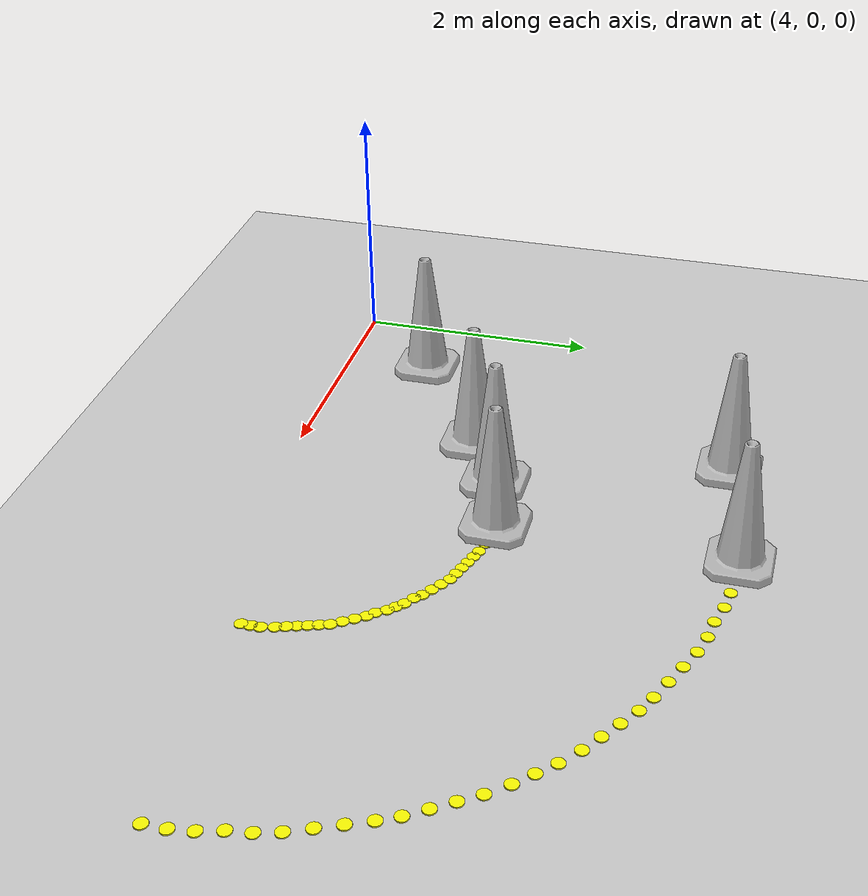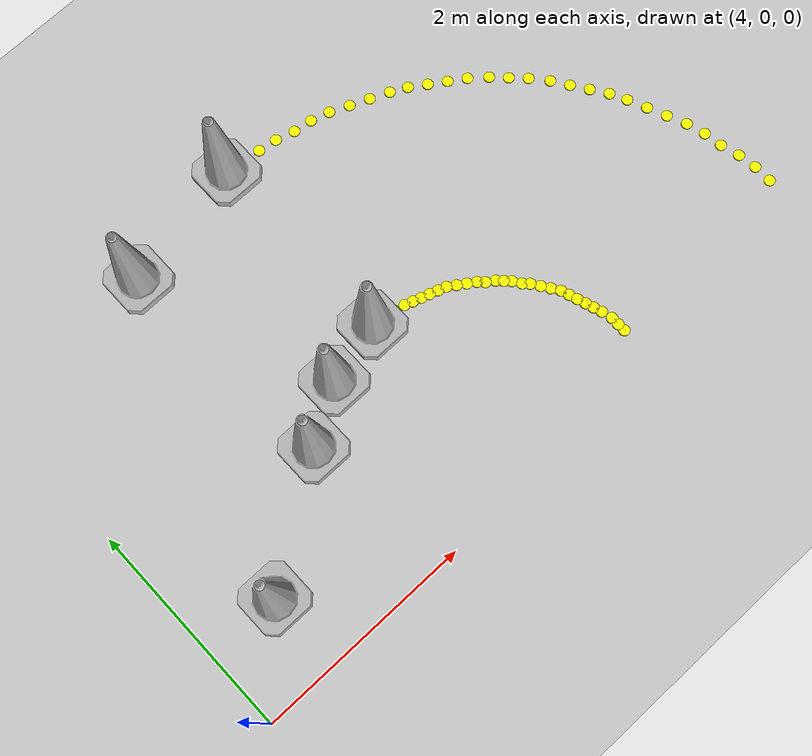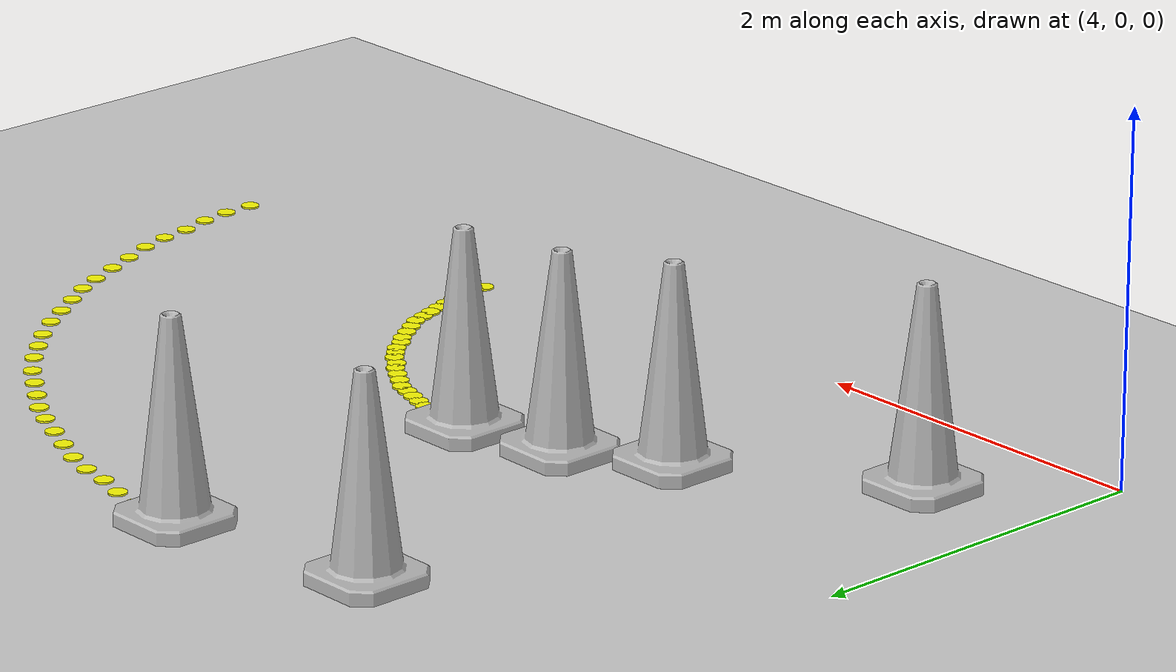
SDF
<sdf version="1.6">
 <world name="default">
  <model name="ground_plane">
   <static>1</static>
   <link name="link">
    <collision name="collision">
     <geometry><plane><normal>0 0 1</normal><size>100 100</size></plane></geometry>
     <surface><friction><ode><mu>100</mu><mu2>50</mu2></ode></friction></surface>
    </collision>
    <visual name="visual">
     <cast_shadows>0</cast_shadows>
     <geometry><plane><normal>0 0 1</normal><size>100 100</size></plane></geometry>
     <material>
      <script><uri>file://media/materials/scripts/gazebo.material</uri><name>Gazebo/Grey</name></script>
     </material>
    </visual>
   </link>
  </model>
  <model name="red_model_16">
   <link name="link">
    <collision name="collision">
     <geometry>
      <mesh><scale>10 10 10</scale><uri>model://construction_cone_red/meshes/construction_cone.dae</uri></mesh>
     </geometry>
    </collision>
    <visual name="visual">
     <geometry>
      <mesh><scale>10 10 10</scale><uri>model://construction_cone_red/meshes/construction_cone.dae</uri></mesh>
     </geometry>
    </visual>
    <inertial>
     <inertia><ixx>1</ixx><ixy>0</ixy><ixz>0</ixz><iyy>1</iyy><iyz>0</iyz><izz>1</izz></inertia>
     <mass>1</mass>
    </inertial>
   </link>
   <pose>4.674 0.7134 -0 0 -1e-06 0</pose>
  </model>
  <model name="red_model_23">
   <link name="link">
    <collision name="collision">
     <geometry>
      <mesh><scale>10 10 10</scale><uri>model://construction_cone_red/meshes/construction_cone.dae</uri></mesh>
     </geometry>
    </collision>
    <visual name="visual">
     <geometry>
      <mesh><scale>10 10 10</scale><uri>model://construction_cone_red/meshes/construction_cone.dae</uri></mesh>
     </geometry>
    </visual>
    <inertial>
     <inertia><ixx>1</ixx><ixy>0</ixy><ixz>0</ixz><iyy>1</iyy><iyz>0</iyz><izz>1</izz></inertia>
     <mass>1</mass>
    </inertial>
   </link>
   <pose>5.72569 1.42144 -9.8e-05 0 -0 -0.000104</pose>
  </model>
  <model name="red_model_27">
   <link name="link">
    <collision name="collision">
     <geometry>
      <mesh><scale>10 10 10</scale><uri>model://construction_cone_red/meshes/construction_cone.dae</uri></mesh>
     </geometry>
    </collision>
    <visual name="visual">
     <geometry>
      <mesh><scale>10 10 10</scale><uri>model://construction_cone_red/meshes/construction_cone.dae</uri></mesh>
     </geometry>
    </visual>
    <inertial>
     <inertia><ixx>1</ixx><ixy>0</ixy><ixz>0</ixz><iyy>1</iyy><iyz>0</iyz><izz>1</izz></inertia>
     <mass>1</mass>
    </inertial>
   </link>
   <pose>6.22901 1.72751 0.003913 0.00262 -0.013788 0.0036</pose>
  </model>
  <model name="red_model_30">
   <link name="link">
    <collision name="collision">
     <geometry>
      <mesh><scale>10 10 10</scale><uri>model://construction_cone_red/meshes/construction_cone.dae</uri></mesh>
     </geometry>
    </collision>
    <visual name="visual">
     <geometry>
      <mesh><scale>10 10 10</scale><uri>model://construction_cone_red/meshes/construction_cone.dae</uri></mesh>
     </geometry>
    </visual>
    <inertial>
     <inertia><ixx>1</ixx><ixy>0</ixy><ixz>0</ixz><iyy>1</iyy><iyz>0</iyz><izz>1</izz></inertia>
     <mass>1</mass>
    </inertial>
   </link>
   <pose>6.7896 1.8696 0.00499 0 -0 5e-06</pose>
  </model>
  <model name="blue_model_27">
   <link name="link">
    <collision name="collision">
     <geometry>
      <mesh><scale>10 10 10</scale><uri>model://construction_cone_blue/meshes/construction_cone.dae</uri></mesh>
     </geometry>
    </collision>
    <visual name="visual">
     <geometry>
      <mesh><scale>10 10 10</scale><uri>model://construction_cone_blue/meshes/construction_cone.dae</uri></mesh>
     </geometry>
    </visual>
    <inertial>
     <inertia><ixx>1</ixx><ixy>0</ixy><ixz>0</ixz><iyy>1</iyy><iyz>0</iyz><izz>1</izz></inertia>
     <mass>1</mass>
    </inertial>
   </link>
   <pose>5.6088 3.5178 -0 0 -0 0</pose>
  </model>
  <model name="blue_model_30">
   <link name="link">
    <collision name="collision">
     <geometry>
      <mesh><scale>10 10 10</scale><uri>model://construction_cone_blue/meshes/construction_cone.dae</uri></mesh>
     </geometry>
    </collision>
    <visual name="visual">
     <geometry>
      <mesh><scale>10 10 10</scale><uri>model://construction_cone_blue/meshes/construction_cone.dae</uri></mesh>
     </geometry>
    </visual>
    <inertial>
     <inertia><ixx>1</ixx><ixy>0</ixy><ixz>0</ixz><iyy>1</iyy><iyz>0</iyz><izz>1</izz></inertia>
     <mass>1</mass>
    </inertial>
   </link>
   <pose>6.7896 3.7392 0.00499 0 -0 0</pose>
  </model>
  <model name="yellow_model_0">
   <static>1</static>
   <link name="link">
    <visual name="visual">
     <geometry><cylinder><radius>0.05</radius><length>0.01</length></cylinder></geometry>
     <material><ambient>1 1 0 1</ambient><diffuse>1 1 0 1</diffuse><specular>0.5 0.5 0.5 1</specular></material>
    </visual>
    <collision name="collision">
     <geometry><cylinder><radius>0.5</radius><length>0.01</length></cylinder></geometry>
    </collision>
   </link>
   <pose>6.7896 3.7392 0 0 -0 0</pose>
  </model>
  <model name="yellow_model_1">
   <static>1</static>
   <link name="link">
    <visual name="visual">
     <geometry><cylinder><radius>0.05</radius><length>0.01</length></cylinder></geometry>
     <material><ambient>1 1 0 1</ambient><diffuse>1 1 0 1</diffuse><specular>0.5 0.5 0.5 1</specular></material>
    </visual>
    <collision name="collision">
     <geometry><cylinder><radius>0.5</radius><length>0.01</length></cylinder></geometry>
    </collision>
   </link>
   <pose>6.9618 3.7146 0 0 -0 0</pose>
  </model>
  <model name="yellow_model_2">
   <static>1</static>
   <link name="link">
    <visual name="visual">
     <geometry><cylinder><radius>0.05</radius><length>0.01</length></cylinder></geometry>
     <material><ambient>1 1 0 1</ambient><diffuse>1 1 0 1</diffuse><specular>0.5 0.5 0.5 1</specular></material>
    </visual>
    <collision name="collision">
     <geometry><cylinder><radius>0.5</radius><length>0.01</length></cylinder></geometry>
    </collision>
   </link>
   <pose>7.134 3.7146 0 0 -0 0</pose>
  </model>
  <model name="yellow_model_3">
   <static>1</static>
   <link name="link">
    <visual name="visual">
     <geometry><cylinder><radius>0.05</radius><length>0.01</length></cylinder></geometry>
     <material><ambient>1 1 0 1</ambient><diffuse>1 1 0 1</diffuse><specular>0.5 0.5 0.5 1</specular></material>
    </visual>
    <collision name="collision">
     <geometry><cylinder><radius>0.5</radius><length>0.01</length></cylinder></geometry>
    </collision>
   </link>
   <pose>7.3062 3.69 0 0 -0 0</pose>
  </model>
  <model name="yellow_model_4">
   <static>1</static>
   <link name="link">
    <visual name="visual">
     <geometry><cylinder><radius>0.05</radius><length>0.01</length></cylinder></geometry>
     <material><ambient>1 1 0 1</ambient><diffuse>1 1 0 1</diffuse><specular>0.5 0.5 0.5 1</specular></material>
    </visual>
    <collision name="collision">
     <geometry><cylinder><radius>0.5</radius><length>0.01</length></cylinder></geometry>
    </collision>
   </link>
   <pose>7.4784 3.6408 0 0 -0 0</pose>
  </model>
  <model name="yellow_model_5">
   <static>1</static>
   <link name="link">
    <visual name="visual">
     <geometry><cylinder><radius>0.05</radius><length>0.01</length></cylinder></geometry>
     <material><ambient>1 1 0 1</ambient><diffuse>1 1 0 1</diffuse><specular>0.5 0.5 0.5 1</specular></material>
    </visual>
    <collision name="collision">
     <geometry><cylinder><radius>0.5</radius><length>0.01</length></cylinder></geometry>
    </collision>
   </link>
   <pose>7.6506 3.6162 0 0 -0 0</pose>
  </model>
  <model name="yellow_model_6">
   <static>1</static>
   <link name="link">
    <visual name="visual">
     <geometry><cylinder><radius>0.05</radius><length>0.01</length></cylinder></geometry>
     <material><ambient>1 1 0 1</ambient><diffuse>1 1 0 1</diffuse><specular>0.5 0.5 0.5 1</specular></material>
    </visual>
    <collision name="collision">
     <geometry><cylinder><radius>0.5</radius><length>0.01</length></cylinder></geometry>
    </collision>
   </link>
   <pose>7.8228 3.567 0 0 -0 0</pose>
  </model>
  <model name="yellow_model_7">
   <static>1</static>
   <link name="link">
    <visual name="visual">
     <geometry><cylinder><radius>0.05</radius><length>0.01</length></cylinder></geometry>
     <material><ambient>1 1 0 1</ambient><diffuse>1 1 0 1</diffuse><specular>0.5 0.5 0.5 1</specular></material>
    </visual>
    <collision name="collision">
     <geometry><cylinder><radius>0.5</radius><length>0.01</length></cylinder></geometry>
    </collision>
   </link>
   <pose>7.995 3.4932 0 0 -0 0</pose>
  </model>
  <model name="yellow_model_8">
   <static>1</static>
   <link name="link">
    <visual name="visual">
     <geometry><cylinder><radius>0.05</radius><length>0.01</length></cylinder></geometry>
     <material><ambient>1 1 0 1</ambient><diffuse>1 1 0 1</diffuse><specular>0.5 0.5 0.5 1</specular></material>
    </visual>
    <collision name="collision">
     <geometry><cylinder><radius>0.5</radius><length>0.01</length></cylinder></geometry>
    </collision>
   </link>
   <pose>8.1672 3.4194 0 0 -0 0</pose>
  </model>
  <model name="yellow_model_9">
   <static>1</static>
   <link name="link">
    <visual name="visual">
     <geometry><cylinder><radius>0.05</radius><length>0.01</length></cylinder></geometry>
     <material><ambient>1 1 0 1</ambient><diffuse>1 1 0 1</diffuse><specular>0.5 0.5 0.5 1</specular></material>
    </visual>
    <collision name="collision">
     <geometry><cylinder><radius>0.5</radius><length>0.01</length></cylinder></geometry>
    </collision>
   </link>
   <pose>8.3394 3.3456 0 0 -0 0</pose>
  </model>
  <model name="yellow_model_10">
   <static>1</static>
   <link name="link">
    <visual name="visual">
     <geometry><cylinder><radius>0.05</radius><length>0.01</length></cylinder></geometry>
     <material><ambient>1 1 0 1</ambient><diffuse>1 1 0 1</diffuse><specular>0.5 0.5 0.5 1</specular></material>
    </visual>
    <collision name="collision">
     <geometry><cylinder><radius>0.5</radius><length>0.01</length></cylinder></geometry>
    </collision>
   </link>
   <pose>8.487 3.2718 0 0 -0 0</pose>
  </model>
  <model name="yellow_model_11">
   <static>1</static>
   <link name="link">
    <visual name="visual">
     <geometry><cylinder><radius>0.05</radius><length>0.01</length></cylinder></geometry>
     <material><ambient>1 1 0 1</ambient><diffuse>1 1 0 1</diffuse><specular>0.5 0.5 0.5 1</specular></material>
    </visual>
    <collision name="collision">
     <geometry><cylinder><radius>0.5</radius><length>0.01</length></cylinder></geometry>
    </collision>
   </link>
   <pose>8.6346 3.1734 0 0 -0 0</pose>
  </model>
  <model name="yellow_model_12">
   <static>1</static>
   <link name="link">
    <visual name="visual">
     <geometry><cylinder><radius>0.05</radius><length>0.01</length></cylinder></geometry>
     <material><ambient>1 1 0 1</ambient><diffuse>1 1 0 1</diffuse><specular>0.5 0.5 0.5 1</specular></material>
    </visual>
    <collision name="collision">
     <geometry><cylinder><radius>0.5</radius><length>0.01</length></cylinder></geometry>
    </collision>
   </link>
   <pose>8.7822 3.075 0 0 -0 0</pose>
  </model>
  <model name="yellow_model_13">
   <static>1</static>
   <link name="link">
    <visual name="visual">
     <geometry><cylinder><radius>0.05</radius><length>0.01</length></cylinder></geometry>
     <material><ambient>1 1 0 1</ambient><diffuse>1 1 0 1</diffuse><specular>0.5 0.5 0.5 1</specular></material>
    </visual>
    <collision name="collision">
     <geometry><cylinder><radius>0.5</radius><length>0.01</length></cylinder></geometry>
    </collision>
   </link>
   <pose>8.9298 2.9766 0 0 -0 0</pose>
  </model>
  <model name="yellow_model_14">
   <static>1</static>
   <link name="link">
    <visual name="visual">
     <geometry><cylinder><radius>0.05</radius><length>0.01</length></cylinder></geometry>
     <material><ambient>1 1 0 1</ambient><diffuse>1 1 0 1</diffuse><specular>0.5 0.5 0.5 1</specular></material>
    </visual>
    <collision name="collision">
     <geometry><cylinder><radius>0.5</radius><length>0.01</length></cylinder></geometry>
    </collision>
   </link>
   <pose>9.0774 2.8536 0 0 -0 0</pose>
  </model>
  <model name="yellow_model_15">
   <static>1</static>
   <link name="link">
    <visual name="visual">
     <geometry><cylinder><radius>0.05</radius><length>0.01</length></cylinder></geometry>
     <material><ambient>1 1 0 1</ambient><diffuse>1 1 0 1</diffuse><specular>0.5 0.5 0.5 1</specular></material>
    </visual>
    <collision name="collision">
     <geometry><cylinder><radius>0.5</radius><length>0.01</length></cylinder></geometry>
    </collision>
   </link>
   <pose>9.2004 2.7306 0 0 -0 0</pose>
  </model>
  <model name="yellow_model_16">
   <static>1</static>
   <link name="link">
    <visual name="visual">
     <geometry><cylinder><radius>0.05</radius><length>0.01</length></cylinder></geometry>
     <material><ambient>1 1 0 1</ambient><diffuse>1 1 0 1</diffuse><specular>0.5 0.5 0.5 1</specular></material>
    </visual>
    <collision name="collision">
     <geometry><cylinder><radius>0.5</radius><length>0.01</length></cylinder></geometry>
    </collision>
   </link>
   <pose>9.3234 2.6076 0 0 -0 0</pose>
  </model>
  <model name="yellow_model_17">
   <static>1</static>
   <link name="link">
    <visual name="visual">
     <geometry><cylinder><radius>0.05</radius><length>0.01</length></cylinder></geometry>
     <material><ambient>1 1 0 1</ambient><diffuse>1 1 0 1</diffuse><specular>0.5 0.5 0.5 1</specular></material>
    </visual>
    <collision name="collision">
     <geometry><cylinder><radius>0.5</radius><length>0.01</length></cylinder></geometry>
    </collision>
   </link>
   <pose>9.4464 2.46 0 0 -0 0</pose>
  </model>
  <model name="yellow_model_18">
   <static>1</static>
   <link name="link">
    <visual name="visual">
     <geometry><cylinder><radius>0.05</radius><length>0.01</length></cylinder></geometry>
     <material><ambient>1 1 0 1</ambient><diffuse>1 1 0 1</diffuse><specular>0.5 0.5 0.5 1</specular></material>
    </visual>
    <collision name="collision">
     <geometry><cylinder><radius>0.5</radius><length>0.01</length></cylinder></geometry>
    </collision>
   </link>
   <pose>9.5448 2.3124 0 0 -0 0</pose>
  </model>
  <model name="yellow_model_19">
   <static>1</static>
   <link name="link">
    <visual name="visual">
     <geometry><cylinder><radius>0.05</radius><length>0.01</length></cylinder></geometry>
     <material><ambient>1 1 0 1</ambient><diffuse>1 1 0 1</diffuse><specular>0.5 0.5 0.5 1</specular></material>
    </visual>
    <collision name="collision">
     <geometry><cylinder><radius>0.5</radius><length>0.01</length></cylinder></geometry>
    </collision>
   </link>
   <pose>9.6432 2.1648 0 0 -0 0</pose>
  </model>
  <model name="yellow_model_20">
   <static>1</static>
   <link name="link">
    <visual name="visual">
     <geometry><cylinder><radius>0.05</radius><length>0.01</length></cylinder></geometry>
     <material><ambient>1 1 0 1</ambient><diffuse>1 1 0 1</diffuse><specular>0.5 0.5 0.5 1</specular></material>
    </visual>
    <collision name="collision">
     <geometry><cylinder><radius>0.5</radius><length>0.01</length></cylinder></geometry>
    </collision>
   </link>
   <pose>9.7416 2.0172 0 0 -0 0</pose>
  </model>
  <model name="yellow_model_21">
   <static>1</static>
   <link name="link">
    <visual name="visual">
     <geometry><cylinder><radius>0.05</radius><length>0.01</length></cylinder></geometry>
     <material><ambient>1 1 0 1</ambient><diffuse>1 1 0 1</diffuse><specular>0.5 0.5 0.5 1</specular></material>
    </visual>
    <collision name="collision">
     <geometry><cylinder><radius>0.5</radius><length>0.01</length></cylinder></geometry>
    </collision>
   </link>
   <pose>9.8154 1.8696 0 0 -0 0</pose>
  </model>
  <model name="yellow_model_22">
   <static>1</static>
   <link name="link">
    <visual name="visual">
     <geometry><cylinder><radius>0.05</radius><length>0.01</length></cylinder></geometry>
     <material><ambient>1 1 0 1</ambient><diffuse>1 1 0 1</diffuse><specular>0.5 0.5 0.5 1</specular></material>
    </visual>
    <collision name="collision">
     <geometry><cylinder><radius>0.5</radius><length>0.01</length></cylinder></geometry>
    </collision>
   </link>
   <pose>9.8892 1.6974 0 0 -0 0</pose>
  </model>
  <model name="yellow_model_23">
   <static>1</static>
   <link name="link">
    <visual name="visual">
     <geometry><cylinder><radius>0.05</radius><length>0.01</length></cylinder></geometry>
     <material><ambient>1 1 0 1</ambient><diffuse>1 1 0 1</diffuse><specular>0.5 0.5 0.5 1</specular></material>
    </visual>
    <collision name="collision">
     <geometry><cylinder><radius>0.5</radius><length>0.01</length></cylinder></geometry>
    </collision>
   </link>
   <pose>9.963 1.5252 0 0 -0 0</pose>
  </model>
  <model name="yellow_model_24">
   <static>1</static>
   <link name="link">
    <visual name="visual">
     <geometry><cylinder><radius>0.05</radius><length>0.01</length></cylinder></geometry>
     <material><ambient>1 1 0 1</ambient><diffuse>1 1 0 1</diffuse><specular>0.5 0.5 0.5 1</specular></material>
    </visual>
    <collision name="collision">
     <geometry><cylinder><radius>0.5</radius><length>0.01</length></cylinder></geometry>
    </collision>
   </link>
   <pose>10.0368 1.353 0 0 -0 0</pose>
  </model>
  <model name="yellow_model_25">
   <static>1</static>
   <link name="link">
    <visual name="visual">
     <geometry><cylinder><radius>0.05</radius><length>0.01</length></cylinder></geometry>
     <material><ambient>1 1 0 1</ambient><diffuse>1 1 0 1</diffuse><specular>0.5 0.5 0.5 1</specular></material>
    </visual>
    <collision name="collision">
     <geometry><cylinder><radius>0.5</radius><length>0.01</length></cylinder></geometry>
    </collision>
   </link>
   <pose>10.086 1.1808 0 0 -0 0</pose>
  </model>
  <model name="yellow_model_26">
   <static>1</static>
   <link name="link">
    <visual name="visual">
     <geometry><cylinder><radius>0.05</radius><length>0.01</length></cylinder></geometry>
     <material><ambient>1 1 0 1</ambient><diffuse>1 1 0 1</diffuse><specular>0.5 0.5 0.5 1</specular></material>
    </visual>
    <collision name="collision">
     <geometry><cylinder><radius>0.5</radius><length>0.01</length></cylinder></geometry>
    </collision>
   </link>
   <pose>10.1106 1.0086 0 0 -0 0</pose>
  </model>
  <model name="yellow_model_27">
   <static>1</static>
   <link name="link">
    <visual name="visual">
     <geometry><cylinder><radius>0.05</radius><length>0.01</length></cylinder></geometry>
     <material><ambient>1 1 0 1</ambient><diffuse>1 1 0 1</diffuse><specular>0.5 0.5 0.5 1</specular></material>
    </visual>
    <collision name="collision">
     <geometry><cylinder><radius>0.5</radius><length>0.01</length></cylinder></geometry>
    </collision>
   </link>
   <pose>10.1598 0.8364 0 0 -0 0</pose>
  </model>
  <model name="yellow_model_28">
   <static>1</static>
   <link name="link">
    <visual name="visual">
     <geometry><cylinder><radius>0.05</radius><length>0.01</length></cylinder></geometry>
     <material><ambient>1 1 0 1</ambient><diffuse>1 1 0 1</diffuse><specular>0.5 0.5 0.5 1</specular></material>
    </visual>
    <collision name="collision">
     <geometry><cylinder><radius>0.5</radius><length>0.01</length></cylinder></geometry>
    </collision>
   </link>
   <pose>10.1844 0.6642 0 0 -0 0</pose>
  </model>
  <model name="yellow_model_29">
   <static>1</static>
   <link name="link">
    <visual name="visual">
     <geometry><cylinder><radius>0.05</radius><length>0.01</length></cylinder></geometry>
     <material><ambient>1 1 0 1</ambient><diffuse>1 1 0 1</diffuse><specular>0.5 0.5 0.5 1</specular></material>
    </visual>
    <collision name="collision">
     <geometry><cylinder><radius>0.5</radius><length>0.01</length></cylinder></geometry>
    </collision>
   </link>
   <pose>10.1844 0.492 0 0 -0 0</pose>
  </model>
  <model name="yellow_model_61">
   <static>1</static>
   <link name="link">
    <visual name="visual">
     <geometry><cylinder><radius>0.05</radius><length>0.01</length></cylinder></geometry>
     <material><ambient>1 1 0 1</ambient><diffuse>1 1 0 1</diffuse><specular>0.5 0.5 0.5 1</specular></material>
    </visual>
    <collision name="collision">
     <geometry><cylinder><radius>0.5</radius><length>0.01</length></cylinder></geometry>
    </collision>
   </link>
   <pose>6.7896 1.8696 0 0 -0 0</pose>
  </model>
  <model name="yellow_model_62">
   <static>1</static>
   <link name="link">
    <visual name="visual">
     <geometry><cylinder><radius>0.05</radius><length>0.01</length></cylinder></geometry>
     <material><ambient>1 1 0 1</ambient><diffuse>1 1 0 1</diffuse><specular>0.5 0.5 0.5 1</specular></material>
    </visual>
    <collision name="collision">
     <geometry><cylinder><radius>0.5</radius><length>0.01</length></cylinder></geometry>
    </collision>
   </link>
   <pose>6.8634 1.845 0 0 -0 0</pose>
  </model>
  <model name="yellow_model_63">
   <static>1</static>
   <link name="link">
    <visual name="visual">
     <geometry><cylinder><radius>0.05</radius><length>0.01</length></cylinder></geometry>
     <material><ambient>1 1 0 1</ambient><diffuse>1 1 0 1</diffuse><specular>0.5 0.5 0.5 1</specular></material>
    </visual>
    <collision name="collision">
     <geometry><cylinder><radius>0.5</radius><length>0.01</length></cylinder></geometry>
    </collision>
   </link>
   <pose>6.9372 1.845 0 0 -0 0</pose>
  </model>
  <model name="yellow_model_64">
   <static>1</static>
   <link name="link">
    <visual name="visual">
     <geometry><cylinder><radius>0.05</radius><length>0.01</length></cylinder></geometry>
     <material><ambient>1 1 0 1</ambient><diffuse>1 1 0 1</diffuse><specular>0.5 0.5 0.5 1</specular></material>
    </visual>
    <collision name="collision">
     <geometry><cylinder><radius>0.5</radius><length>0.01</length></cylinder></geometry>
    </collision>
   </link>
   <pose>7.011 1.845 0 0 -0 0</pose>
  </model>
  <model name="yellow_model_65">
   <static>1</static>
   <link name="link">
    <visual name="visual">
     <geometry><cylinder><radius>0.05</radius><length>0.01</length></cylinder></geometry>
     <material><ambient>1 1 0 1</ambient><diffuse>1 1 0 1</diffuse><specular>0.5 0.5 0.5 1</specular></material>
    </visual>
    <collision name="collision">
     <geometry><cylinder><radius>0.5</radius><length>0.01</length></cylinder></geometry>
    </collision>
   </link>
   <pose>7.1094 1.8204 0 0 -0 0</pose>
  </model>
  <model name="yellow_model_66">
   <static>1</static>
   <link name="link">
    <visual name="visual">
     <geometry><cylinder><radius>0.05</radius><length>0.01</length></cylinder></geometry>
     <material><ambient>1 1 0 1</ambient><diffuse>1 1 0 1</diffuse><specular>0.5 0.5 0.5 1</specular></material>
    </visual>
    <collision name="collision">
     <geometry><cylinder><radius>0.5</radius><length>0.01</length></cylinder></geometry>
    </collision>
   </link>
   <pose>7.1832 1.7958 0 0 -0 0</pose>
  </model>
  <model name="yellow_model_67">
   <static>1</static>
   <link name="link">
    <visual name="visual">
     <geometry><cylinder><radius>0.05</radius><length>0.01</length></cylinder></geometry>
     <material><ambient>1 1 0 1</ambient><diffuse>1 1 0 1</diffuse><specular>0.5 0.5 0.5 1</specular></material>
    </visual>
    <collision name="collision">
     <geometry><cylinder><radius>0.5</radius><length>0.01</length></cylinder></geometry>
    </collision>
   </link>
   <pose>7.257 1.7712 0 0 -0 0</pose>
  </model>
  <model name="yellow_model_68">
   <static>1</static>
   <link name="link">
    <visual name="visual">
     <geometry><cylinder><radius>0.05</radius><length>0.01</length></cylinder></geometry>
     <material><ambient>1 1 0 1</ambient><diffuse>1 1 0 1</diffuse><specular>0.5 0.5 0.5 1</specular></material>
    </visual>
    <collision name="collision">
     <geometry><cylinder><radius>0.5</radius><length>0.01</length></cylinder></geometry>
    </collision>
   </link>
   <pose>7.3308 1.7466 0 0 -0 0</pose>
  </model>
  <model name="yellow_model_69">
   <static>1</static>
   <link name="link">
    <visual name="visual">
     <geometry><cylinder><radius>0.05</radius><length>0.01</length></cylinder></geometry>
     <material><ambient>1 1 0 1</ambient><diffuse>1 1 0 1</diffuse><specular>0.5 0.5 0.5 1</specular></material>
    </visual>
    <collision name="collision">
     <geometry><cylinder><radius>0.5</radius><length>0.01</length></cylinder></geometry>
    </collision>
   </link>
   <pose>7.4046 1.722 0 0 -0 0</pose>
  </model>
  <model name="yellow_model_70">
   <static>1</static>
   <link name="link">
    <visual name="visual">
     <geometry><cylinder><radius>0.05</radius><length>0.01</length></cylinder></geometry>
     <material><ambient>1 1 0 1</ambient><diffuse>1 1 0 1</diffuse><specular>0.5 0.5 0.5 1</specular></material>
    </visual>
    <collision name="collision">
     <geometry><cylinder><radius>0.5</radius><length>0.01</length></cylinder></geometry>
    </collision>
   </link>
   <pose>7.4784 1.6974 0 0 -0 0</pose>
  </model>
  <model name="yellow_model_71">
   <static>1</static>
   <link name="link">
    <visual name="visual">
     <geometry><cylinder><radius>0.05</radius><length>0.01</length></cylinder></geometry>
     <material><ambient>1 1 0 1</ambient><diffuse>1 1 0 1</diffuse><specular>0.5 0.5 0.5 1</specular></material>
    </visual>
    <collision name="collision">
     <geometry><cylinder><radius>0.5</radius><length>0.01</length></cylinder></geometry>
    </collision>
   </link>
   <pose>7.5522 1.6482 0 0 -0 0</pose>
  </model>
  <model name="yellow_model_72">
   <static>1</static>
   <link name="link">
    <visual name="visual">
     <geometry><cylinder><radius>0.05</radius><length>0.01</length></cylinder></geometry>
     <material><ambient>1 1 0 1</ambient><diffuse>1 1 0 1</diffuse><specular>0.5 0.5 0.5 1</specular></material>
    </visual>
    <collision name="collision">
     <geometry><cylinder><radius>0.5</radius><length>0.01</length></cylinder></geometry>
    </collision>
   </link>
   <pose>7.626 1.599 0 0 -0 0</pose>
  </model>
  <model name="yellow_model_73">
   <static>1</static>
   <link name="link">
    <visual name="visual">
     <geometry><cylinder><radius>0.05</radius><length>0.01</length></cylinder></geometry>
     <material><ambient>1 1 0 1</ambient><diffuse>1 1 0 1</diffuse><specular>0.5 0.5 0.5 1</specular></material>
    </visual>
    <collision name="collision">
     <geometry><cylinder><radius>0.5</radius><length>0.01</length></cylinder></geometry>
    </collision>
   </link>
   <pose>7.6998 1.5498 0 0 -0 0</pose>
  </model>
  <model name="yellow_model_74">
   <static>1</static>
   <link name="link">
    <visual name="visual">
     <geometry><cylinder><radius>0.05</radius><length>0.01</length></cylinder></geometry>
     <material><ambient>1 1 0 1</ambient><diffuse>1 1 0 1</diffuse><specular>0.5 0.5 0.5 1</specular></material>
    </visual>
    <collision name="collision">
     <geometry><cylinder><radius>0.5</radius><length>0.01</length></cylinder></geometry>
    </collision>
   </link>
   <pose>7.749 1.5006 0 0 -0 0</pose>
  </model>
  <model name="yellow_model_75">
   <static>1</static>
   <link name="link">
    <visual name="visual">
     <geometry><cylinder><radius>0.05</radius><length>0.01</length></cylinder></geometry>
     <material><ambient>1 1 0 1</ambient><diffuse>1 1 0 1</diffuse><specular>0.5 0.5 0.5 1</specular></material>
    </visual>
    <collision name="collision">
     <geometry><cylinder><radius>0.5</radius><length>0.01</length></cylinder></geometry>
    </collision>
   </link>
   <pose>7.8228 1.4514 0 0 -0 0</pose>
  </model>
  <model name="yellow_model_76">
   <static>1</static>
   <link name="link">
    <visual name="visual">
     <geometry><cylinder><radius>0.05</radius><length>0.01</length></cylinder></geometry>
     <material><ambient>1 1 0 1</ambient><diffuse>1 1 0 1</diffuse><specular>0.5 0.5 0.5 1</specular></material>
    </visual>
    <collision name="collision">
     <geometry><cylinder><radius>0.5</radius><length>0.01</length></cylinder></geometry>
    </collision>
   </link>
   <pose>7.872 1.4022 0 0 -0 0</pose>
  </model>
  <model name="yellow_model_77">
   <static>1</static>
   <link name="link">
    <visual name="visual">
     <geometry><cylinder><radius>0.05</radius><length>0.01</length></cylinder></geometry>
     <material><ambient>1 1 0 1</ambient><diffuse>1 1 0 1</diffuse><specular>0.5 0.5 0.5 1</specular></material>
    </visual>
    <collision name="collision">
     <geometry><cylinder><radius>0.5</radius><length>0.01</length></cylinder></geometry>
    </collision>
   </link>
   <pose>7.9212 1.353 0 0 -0 0</pose>
  </model>
  <model name="yellow_model_78">
   <static>1</static>
   <link name="link">
    <visual name="visual">
     <geometry><cylinder><radius>0.05</radius><length>0.01</length></cylinder></geometry>
     <material><ambient>1 1 0 1</ambient><diffuse>1 1 0 1</diffuse><specular>0.5 0.5 0.5 1</specular></material>
    </visual>
    <collision name="collision">
     <geometry><cylinder><radius>0.5</radius><length>0.01</length></cylinder></geometry>
    </collision>
   </link>
   <pose>7.9704 1.2792 0 0 -0 0</pose>
  </model>
  <model name="yellow_model_79">
   <static>1</static>
   <link name="link">
    <visual name="visual">
     <geometry><cylinder><radius>0.05</radius><length>0.01</length></cylinder></geometry>
     <material><ambient>1 1 0 1</ambient><diffuse>1 1 0 1</diffuse><specular>0.5 0.5 0.5 1</specular></material>
    </visual>
    <collision name="collision">
     <geometry><cylinder><radius>0.5</radius><length>0.01</length></cylinder></geometry>
    </collision>
   </link>
   <pose>8.0196 1.23 0 0 -0 0</pose>
  </model>
  <model name="yellow_model_80">
   <static>1</static>
   <link name="link">
    <visual name="visual">
     <geometry><cylinder><radius>0.05</radius><length>0.01</length></cylinder></geometry>
     <material><ambient>1 1 0 1</ambient><diffuse>1 1 0 1</diffuse><specular>0.5 0.5 0.5 1</specular></material>
    </visual>
    <collision name="collision">
     <geometry><cylinder><radius>0.5</radius><length>0.01</length></cylinder></geometry>
    </collision>
   </link>
   <pose>8.0688 1.1562 0 0 -0 0</pose>
  </model>
  <model name="yellow_model_81">
   <static>1</static>
   <link name="link">
    <visual name="visual">
     <geometry><cylinder><radius>0.05</radius><length>0.01</length></cylinder></geometry>
     <material><ambient>1 1 0 1</ambient><diffuse>1 1 0 1</diffuse><specular>0.5 0.5 0.5 1</specular></material>
    </visual>
    <collision name="collision">
     <geometry><cylinder><radius>0.5</radius><length>0.01</length></cylinder></geometry>
    </collision>
   </link>
   <pose>8.118 1.0824 0 0 -0 0</pose>
  </model>
  <model name="yellow_model_82">
   <static>1</static>
   <link name="link">
    <visual name="visual">
     <geometry><cylinder><radius>0.05</radius><length>0.01</length></cylinder></geometry>
     <material><ambient>1 1 0 1</ambient><diffuse>1 1 0 1</diffuse><specular>0.5 0.5 0.5 1</specular></material>
    </visual>
    <collision name="collision">
     <geometry><cylinder><radius>0.5</radius><length>0.01</length></cylinder></geometry>
    </collision>
   </link>
   <pose>8.1672 1.0086 0 0 -0 0</pose>
  </model>
  <model name="yellow_model_83">
   <static>1</static>
   <link name="link">
    <visual name="visual">
     <geometry><cylinder><radius>0.05</radius><length>0.01</length></cylinder></geometry>
     <material><ambient>1 1 0 1</ambient><diffuse>1 1 0 1</diffuse><specular>0.5 0.5 0.5 1</specular></material>
    </visual>
    <collision name="collision">
     <geometry><cylinder><radius>0.5</radius><length>0.01</length></cylinder></geometry>
    </collision>
   </link>
   <pose>8.1918 0.9348 0 0 -0 0</pose>
  </model>
  <model name="yellow_model_84">
   <static>1</static>
   <link name="link">
    <visual name="visual">
     <geometry><cylinder><radius>0.05</radius><length>0.01</length></cylinder></geometry>
     <material><ambient>1 1 0 1</ambient><diffuse>1 1 0 1</diffuse><specular>0.5 0.5 0.5 1</specular></material>
    </visual>
    <collision name="collision">
     <geometry><cylinder><radius>0.5</radius><length>0.01</length></cylinder></geometry>
    </collision>
   </link>
   <pose>8.2164 0.861 0 0 -0 0</pose>
  </model>
  <model name="yellow_model_85">
   <static>1</static>
   <link name="link">
    <visual name="visual">
     <geometry><cylinder><radius>0.05</radius><length>0.01</length></cylinder></geometry>
     <material><ambient>1 1 0 1</ambient><diffuse>1 1 0 1</diffuse><specular>0.5 0.5 0.5 1</specular></material>
    </visual>
    <collision name="collision">
     <geometry><cylinder><radius>0.5</radius><length>0.01</length></cylinder></geometry>
    </collision>
   </link>
   <pose>8.241 0.7872 0 0 -0 0</pose>
  </model>
  <model name="yellow_model_86">
   <static>1</static>
   <link name="link">
    <visual name="visual">
     <geometry><cylinder><radius>0.05</radius><length>0.01</length></cylinder></geometry>
     <material><ambient>1 1 0 1</ambient><diffuse>1 1 0 1</diffuse><specular>0.5 0.5 0.5 1</specular></material>
    </visual>
    <collision name="collision">
     <geometry><cylinder><radius>0.5</radius><length>0.01</length></cylinder></geometry>
    </collision>
   </link>
   <pose>8.2656 0.7134 0 0 -0 0</pose>
  </model>
  <model name="yellow_model_87">
   <static>1</static>
   <link name="link">
    <visual name="visual">
     <geometry><cylinder><radius>0.05</radius><length>0.01</length></cylinder></geometry>
     <material><ambient>1 1 0 1</ambient><diffuse>1 1 0 1</diffuse><specular>0.5 0.5 0.5 1</specular></material>
    </visual>
    <collision name="collision">
     <geometry><cylinder><radius>0.5</radius><length>0.01</length></cylinder></geometry>
    </collision>
   </link>
   <pose>8.2902 0.6396 0 0 -0 0</pose>
  </model>
  <model name="yellow_model_88">
   <static>1</static>
   <link name="link">
    <visual name="visual">
     <geometry><cylinder><radius>0.05</radius><length>0.01</length></cylinder></geometry>
     <material><ambient>1 1 0 1</ambient><diffuse>1 1 0 1</diffuse><specular>0.5 0.5 0.5 1</specular></material>
    </visual>
    <collision name="collision">
     <geometry><cylinder><radius>0.5</radius><length>0.01</length></cylinder></geometry>
    </collision>
   </link>
   <pose>8.3148 0.5412 0 0 -0 0</pose>
  </model>
  <model name="yellow_model_89">
   <static>1</static>
   <link name="link">
    <visual name="visual">
     <geometry><cylinder><radius>0.05</radius><length>0.01</length></cylinder></geometry>
     <material><ambient>1 1 0 1</ambient><diffuse>1 1 0 1</diffuse><specular>0.5 0.5 0.5 1</specular></material>
    </visual>
    <collision name="collision">
     <geometry><cylinder><radius>0.5</radius><length>0.01</length></cylinder></geometry>
    </collision>
   </link>
   <pose>8.3148 0.4674 0 0 -0 0</pose>
  </model>
  <model name="yellow_model_90">
   <static>1</static>
   <link name="link">
    <visual name="visual">
     <geometry><cylinder><radius>0.05</radius><length>0.01</length></cylinder></geometry>
     <material><ambient>1 1 0 1</ambient><diffuse>1 1 0 1</diffuse><specular>0.5 0.5 0.5 1</specular></material>
    </visual>
    <collision name="collision">
     <geometry><cylinder><radius>0.5</radius><length>0.01</length></cylinder></geometry>
    </collision>
   </link>
   <pose>8.3148 0.3936 0 0 -0 0</pose>
  </model>
 </world>
</sdf>
